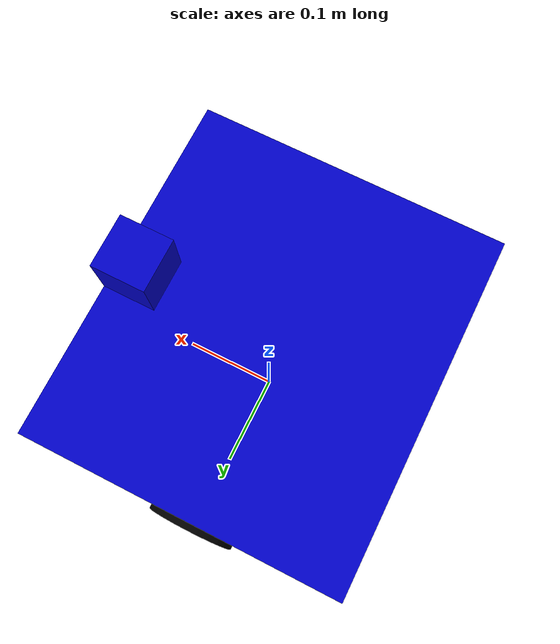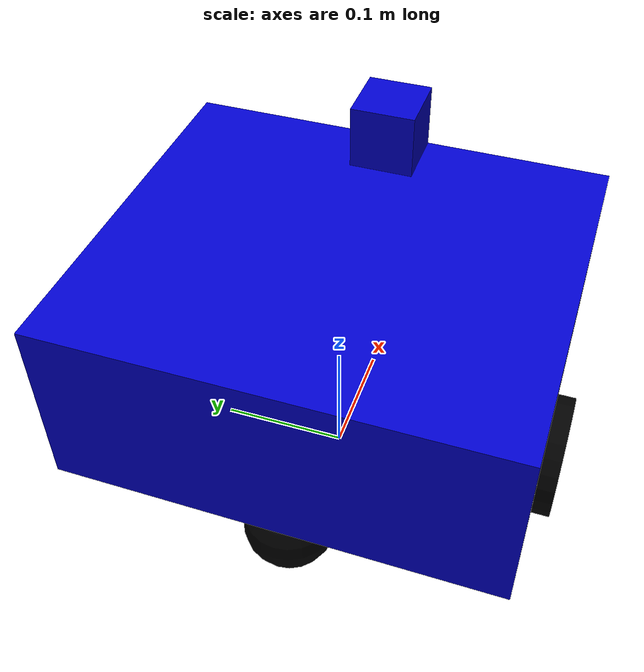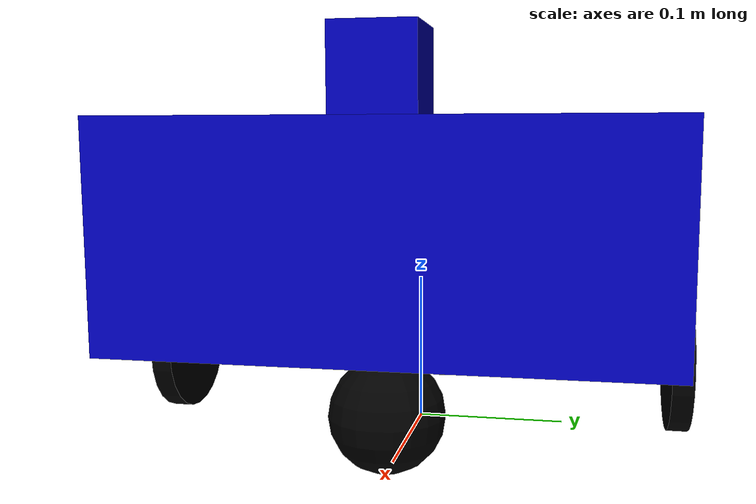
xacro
<?xml version="1.0"?>
<robot name="robot_model" xmlns:xacro="http://ros.org/wiki/xacro">
    <xacro:include filename="$(find service_robot)/urdf/wheel.urdf.xacro" />
    <xacro:include filename="$(find service_robot)/urdf/side_wheel.urdf.xacro" />
    <material name="Black">
    <color rgba="0.0 0.0 0.0 1.0"/>
    </material>

    <material name="Red">
        <color rgba="0.8 0.0 0.0 1.0"/>
    </material>

    <material name="White">
        <color rgba="1.0 1.0 1.0 1.0"/>
    </material>

    <material name="Blue">
        <color rgba="0.0 0.0 0.8 1.0"/>
    </material>

    <!-- radians unit system -->
    <xacro:property name="M_PI" value="3.1415926535897931" />
    <xacro:property name="M_PI_2" value="1.570796327" />
    <xacro:property name="DEG_TO_RAD" value="0.017453293" />

    <!-- main body -->
    <xacro:property name="base_depth" value="0.14" />
        <!--chieu rong - y  -->
    <xacro:property name="base_width" value="0.34" />
    <!-- chieu dai - x -->
    <xacro:property name="base_height" value="0.3" />
    <xacro:property name="base_mass" value="10" /> <!-- in kg-->

    <!-- Wheels -->

    <xacro:property name="wheel_mass" value="2.5" />  <!-- in kg-->
    <xacro:property name="wheel_radius" value="0.0475" />

    <!-- Hokuyo Laser scanner -->
    <xacro:property name="hokuyo_size" value="0.05" />

    <xacro:property name="base_x_origin_to_wheel_origin" value="0.2" />
    <xacro:property name="base_y_origin_to_wheel_origin" value="0.1" />
    <xacro:property name="base_z_origin_to_wheel_origin" value="0.025" />

    <xacro:macro name="cylinder_inertia" params="m r h">
        <inertia  ixx="${m*(3*r*r+h*h)/12}" ixy = "0" ixz = "0"
                iyy="${m*(3*r*r+h*h)/12}" iyz = "0"
                izz="${m*r*r/2}" />
    </xacro:macro>

    <xacro:macro name="box_inertia" params="m w h d">
        <inertia  ixx="${(m*(h*h + d*d))/12}" ixy = "0" ixz = "0"
                iyy="${(m*(w*w + d*d))/12}" iyz = "0"
                izz="${(m*(w*w + h*h))/12}" />
    </xacro:macro>

    <link name="base_footprint">
        <inertial>
            <mass value="0.0001" />
            <origin xyz="0 0 0" />
            <inertia ixx="0.0001" ixy="0.0" ixz="0.0"
                iyy="0.0001" iyz="0.0"
                izz="0.0001" />
        </inertial>

        <visual>
            <origin xyz="0 0 0" rpy="0 0 0" />
            <geometry>
                <box size="0.001 0.001 0.001" />
            </geometry>
        </visual>
    </link>

    <joint name="base_footprint_joint" type="fixed">
        <origin xyz="0 0 ${base_depth/2 + 0.07}" rpy="0 0 0" />
        <parent link="base_footprint"/>
        <child link="base_link" />
    </joint>

    <gazebo reference="base_footprint">
        <turnGravityOff>false</turnGravityOff>
    </gazebo>

    <!-- base link defination -->
    <link name="base_link">
        <visual>
            <origin xyz="0.0 0.0 0.0"/>
            <geometry>
                <box size="${base_height} ${base_width} ${base_depth}"/>
            </geometry>
            <material name="Blue"/>
        </visual>

        <inertial>
            <mass value="${base_mass}"/>
            <origin xyz="0.0 0.0 0.0"/>
            <box_inertia m = "${base_mass}" w = "${base_width}" h = "${base_height}" d = "${base_depth}"/>

        </inertial>

        <collision>
            <origin xyz="0.0 0.0 0.0"/>
            <geometry>
                <box size="${base_height} ${base_width} ${base_depth}"/>
            </geometry>
            <material name="Blue"/>
        </collision>

    </link>

    <gazebo reference="base_link">
        <material>Gazebo/Blue</material>
        <turnGravityOff>false</turnGravityOff>
    </gazebo>

    <!-- Wheel defination -->
    <wheel lr="right" parent="base_link" translateX="1" translateY="-1" flipY="1"/>
    <wheel lr="left" parent="base_link" translateX="1" translateY="1" flipY="-1"/>

    <!-- Castle Wheel -->
    <side_wheel fb = "font" parent="base_link" translateX="1" translateY="1"/>
    <side_wheel fb = "back" parent="base_link" translateX="-1" translateY="1"/>

    <!-- IMU -->
    <joint name="imu_joint" type="fixed">
        <parent link="base_link"/>
        <child link="imu_link"/>
        <origin xyz="0.0 0 0.068" rpy="0 0 0"/>
    </joint>

    <link name="imu_link"/>

    <gazebo reference="imu_link">
        <sensor type="imu" name="imu">
        <always_on>true</always_on>
        <visualize>false</visualize>
        </sensor>
        <material>Gazebo/FlatBlack</material>
    </gazebo>

    <gazebo>
        <plugin name="imu_plugin" filename="libgazebo_ros_imu.so">
            <alwaysOn>true</alwaysOn>
            <bodyName>imu_link</bodyName>
            <frameName>imu_link</frameName>
            <topicName>imu</topicName>
            <serviceName>imu_service</serviceName>
            <gaussianNoise>0.0</gaussianNoise>
            <updateRate>0</updateRate>
            <imu>
                <noise>
                <type>gaussian</type>
                <rate>
                    <mean>0.0</mean>
                    <stddev>2e-4</stddev>
                    <bias_mean>0.0000075</bias_mean>
                    <bias_stddev>0.0000008</bias_stddev>
                </rate>
                <accel>
                    <mean>0.0</mean>
                    <stddev>1.7e-2</stddev>
                    <bias_mean>0.1</bias_mean>
                    <bias_stddev>0.001</bias_stddev>
                </accel>
                </noise>
            </imu>
        </plugin>
    </gazebo>

    <!-- Definition Laser -->
    <link name="hokuyo_link">
        <visual>
        <origin xyz="0 0 0" rpy="0 0 0" />
        <geometry>
            <box size="${hokuyo_size} ${hokuyo_size} ${hokuyo_size}"/>
        </geometry>
        <material name="Blue" />
        </visual>
    </link>

    <joint name="hokuyo_joint" type="fixed">
        <origin xyz="${base_height/2 - hokuyo_size/2} 0 ${(base_depth/2) + (hokuyo_size/2)}" rpy="0 0 0" />
        <parent link="base_link"/>
        <child link="hokuyo_link" />
    </joint>

    <gazebo reference="hokuyo_link">
        <material>Gazebo/Blue</material>
        <turnGravityOff>false</turnGravityOff>
        <sensor type="ray" name="head_hokuyo_sensor">
        <pose>${hokuyo_size/2} 0 0 0 0 0</pose>
        <visualize>false</visualize>
        <update_rate>40</update_rate>
        <ray>
            <scan>
            <horizontal>
                <samples>720</samples>
                <resolution>1</resolution>
                <min_angle>-1.570796</min_angle>
                <max_angle>1.570796</max_angle>
            </horizontal>
            </scan>
            <range>
            <min>0.10</min>
            <max>10.0</max>
            <resolution>0.001</resolution>
            </range>
        </ray>
        <plugin name="gazebo_ros_head_hokuyo_controller" filename="libgazebo_ros_laser.so">
            <topicName>/scan</topicName>
            <frameName>hokuyo_link</frameName>
        </plugin>
        </sensor>
    </gazebo>

    <!-- Gazebo Plug in -->
    <gazebo>
        <plugin name="differential_drive_controller" filename="libgazebo_ros_diff_drive.so">
            <legacyMode>true</legacyMode>
            <rosDebugLevel>Debug</rosDebugLevel>
            <publishWheelTF>false</publishWheelTF>
            <robotNamespace>/</robotNamespace>
            <publishTf>1</publishTf>
            <publishWheelJointState>false</publishWheelJointState>
            <alwaysOn>true</alwaysOn>
            <updateRate>100.0</updateRate>

            <leftJoint>left_wheel_joint</leftJoint>
            <rightJoint>right_wheel_joint</rightJoint>

            <wheelSeparation>${base_width + wheel_depth}</wheelSeparation>
            <wheelDiameter>${2*wheel_radius}</wheelDiameter>

            <broadcastTF>1</broadcastTF>
            <wheelTorque>10</wheelTorque>
            <wheelAcceleration>1</wheelAcceleration>
            <commandTopic>cmd_vel</commandTopic>
            <odometryFrame>odom</odometryFrame>
            <odometryTopic>raw_odom</odometryTopic>
            <robotBaseFrame>base_footprint</robotBaseFrame>

        </plugin>
    </gazebo>

</robot>

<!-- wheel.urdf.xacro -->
<robot name="wheel" xmlns:xacro="http://www.ros.org/wiki/xacro">

    <xacro:property name="M_PI" value="3.1415926535897931" />
    <xacro:property name="wheel_radius" value="0.0475" />
    <xacro:property name="wheel_depth" value="0.014" />
    <xacro:property name="wheel_mass" value="2.5" /> <!-- in kg-->

    <!-- translate form origin to wheel coordinate -->
    <xacro:property name="base_x_base_link_to_wheel_origin" value="0.0" />
    <xacro:property name="base_y_base_link_to_wheel_origin" value="0.170" />
    <xacro:property name="base_z_base_link_to_wheel_origin" value="-0.0925" />

    <xacro:macro name="cylinder_inertia" params="m r h">
    <inertia  ixx="${m*(3*r*r+h*h)/12}" ixy = "0" ixz = "0"
              iyy="${m*(3*r*r+h*h)/12}" iyz = "0"
              izz="${m*r*r/2}" />
    </xacro:macro>
    <!-- fb: front back, lr: left right, translateX, Y: + -, flipY: rotate along Y -->
    <xacro:macro name="wheel" params="lr parent translateX translateY flipY">

        <!-- joint -->
        <link name="${lr}_wheel">

            <visual>
                <origin xyz="0 0 0" rpy="${flipY*M_PI/2} 0  0 " />
                <geometry>
                    <cylinder length="${wheel_depth}" radius="${wheel_radius}" />
                </geometry>
                <material name="Black" />
            </visual>

            <collision>
                <origin xyz="0 0 0" rpy="${flipY*M_PI/2} 0 0 " />
                <geometry>
                    <cylinder length="${wheel_depth}" radius="${wheel_radius}" />
                </geometry>
            </collision>

            <inertial>
                <mass value="${wheel_mass}" />
                <origin xyz="0 0 0" />
                <cylinder_inertia  m="${wheel_mass}" r="${wheel_radius}" h="${wheel_depth}" />
            </inertial>

        </link>

        <!-- gazebo -->
        <gazebo reference="${lr}_wheel">
            <mu1 value="1.0"/>
            <mu2 value="1.0"/>
            <kp  value="10000000.0" />
            <kd  value="1.0" />
            <fdir1 value="1 0 0"/>
            <material>Gazebo/Black</material>
            <turnGravityOff>false</turnGravityOff>
        </gazebo>

        <!-- joint -->

        <joint name="${lr}_wheel_joint" type="continuous">
            <parent link="${parent}"/>
            <child link="${lr}_wheel"/>
            <origin xyz="${translateX * (base_x_base_link_to_wheel_origin)} ${translateY * (base_y_base_link_to_wheel_origin + wheel_depth/2)} ${base_z_base_link_to_wheel_origin}" rpy="0 0 0" />
            <axis xyz="0 1 0" rpy="0 0 0" />
            <limit effort="100" velocity="100"/>
            <joint_properties damping="0.0" friction="0.0"/>
        </joint>

        <!-- Transmission wheel -->
        <transmission name="${lr}_wheel_joint_trans">
            <type>transmission_interface/SimpleTransmission</type>
            <joint name="${lr}_wheel_joint" />
            <actuator name="${lr}_wheel_joint_motor">
                <hardwareInterface>EffortJointInterface</hardwareInterface>
                <mechanicalReduction>1</mechanicalReduction>
            </actuator>
        </transmission>

    </xacro:macro>

</robot>

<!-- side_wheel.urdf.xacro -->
<robot name="side_wheel" xmlns:xacro="http://www.ros.org/wiki/xacro">

    <!-- in kg-->

    <xacro:property name="M_PI_2" value="1.57079632679" />
    <xacro:property name="side_wheel_radius" value="0.035" />
    <xacro:property name="side_wheel_mass" value="0.5" />
    <!-- translate form origin to side_wheel coordinate -->
    <xacro:property name="base_x_base_link_to_side_wheel_origin" value="0.15" />
    <xacro:property name="base_y_base_link_to_side_wheel_origin" value="0.0" />
    <xacro:property name="base_z_base_link_to_side_wheel_origin" value="-0.105" />

    <!-- fb: front back, lr: left right, translateX, Y: + -, flipY: rotate along Y -->
    <xacro:macro name="side_wheel" params="fb parent translateX translateY">

        <link name="caster_${fb}_link">
            <visual>
                <origin rpy="${M_PI_2} 0 0" xyz="0.0 0.0 0 "/>
                <geometry>
                <sphere radius="${side_wheel_radius}"/>
                </geometry>
                <material name="Black"/>
            </visual>
            <collision>
                <geometry>
                <sphere radius="${side_wheel_radius}"/>
                </geometry>
                <origin rpy="${M_PI_2} 0 0" xyz="0 0.0 0 "/>
            </collision>
            <inertial>
                <mass value="${side_wheel_mass}"/>
                <origin xyz="0 0 0"/>
                <inertia ixx="0.001" ixy="0.0" ixz="0.0" iyy="0.001" iyz="0.0" izz="0.001"/>
            </inertial>
        </link>

        <joint name="caster_${fb}_joint" type="fixed">
            <parent link="${parent}"/>
            <child link="caster_${fb}_link"/>

            <origin rpy="-${M_PI_2} 0 0" xyz="${translateX * (base_x_base_link_to_side_wheel_origin - side_wheel_radius)} ${translateY * base_y_base_link_to_side_wheel_origin } ${base_z_base_link_to_side_wheel_origin}"/>
        </joint>

        <gazebo reference="caster_${fb}_link">
            <mu1>0.1</mu1>
            <mu2>0.1</mu2>
            <kp>1000000.0</kp>
            <kd>100.0</kd>
            <minDepth>0.001</minDepth>
            <maxVel>1.0</maxVel>
            <material>Gazebo/FlatBlack</material>
        </gazebo>

    </xacro:macro>

</robot>
